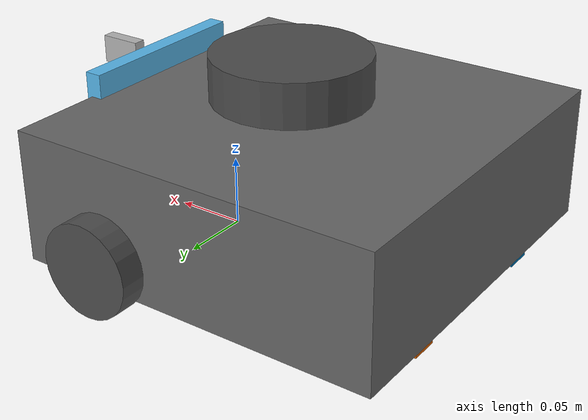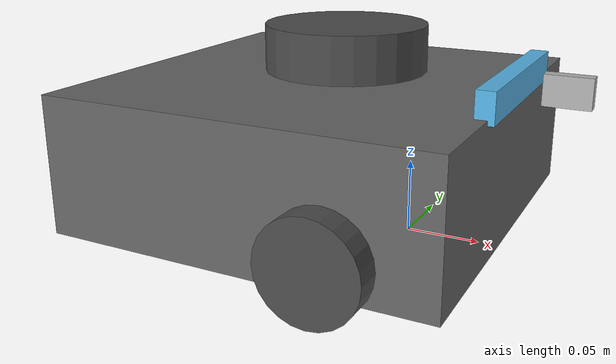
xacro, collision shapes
<?xml version="1.0" ?>
<robot xmlns:xacro="http://www.ros.org/wiki/xacro" name="turtlebot3_waffle">
  <xacro:include filename="$(find multi_turtlebot_sim)/urdf/gazebo_specific.urdf.xacro" />

  <xacro:arg name="frame_prefix" default=""/>
  <xacro:property name="frame_prefix" value="$(arg frame_prefix)"/>
  <xacro:if value="${ frame_prefix  != ''}">
    <!-- Adding '/' to the end of the frame_prefix -->
    <xacro:property name="frame_prefix" value="$(arg frame_prefix)/"/>
  </xacro:if>

  <xacro:arg name="topic_prefix" default=""/>
  <xacro:property name="topic_prefix" value="$(arg topic_prefix)"/>

  <!-- "package://" isn't working with gazebo_ros ROS2(package is replaced by model) so it worked as a workaround to find the meshes -->
  <xacro:property name="meshes_folder" value="$(find multi_turtlebot_sim)/meshes"/>

  <!-- Init colour -->
  <material name="black">
      <color rgba="0.0 0.0 0.0 1.0"/>
  </material>

  <material name="dark">
    <color rgba="0.3 0.3 0.3 1.0"/>
  </material>

  <material name="light_black">
    <color rgba="0.4 0.4 0.4 1.0"/>
  </material>

  <material name="blue">
    <color rgba="0.0 0.0 0.8 1.0"/>
  </material>

  <material name="green">
    <color rgba="0.0 0.8 0.0 1.0"/>
  </material>

  <material name="grey">
    <color rgba="0.5 0.5 0.5 1.0"/>
  </material>

  <material name="orange">
    <color rgba="1.0 0.4235 0.0392 1.0"/>
  </material>

  <material name="brown">
    <color rgba="0.8706 0.8118 0.7647 1.0"/>
  </material>

  <material name="red">
    <color rgba="0.8 0.0 0.0 1.0"/>
  </material>

  <material name="white">
    <color rgba="1.0 1.0 1.0 1.0"/>
  </material>

  <link name="base_footprint"/>

  <joint name="base_joint" type="fixed">
    <parent link="base_footprint"/>
    <child link="base_link" />
    <origin xyz="0 0 0.010" rpy="0 0 0"/>
  </joint>

  <link name="base_link">
    <visual>
      <origin xyz="-0.064 0 0.0" rpy="0 0 0"/>
      <geometry>
        <mesh filename="file://${meshes_folder}/bases/waffle_base.stl" scale="0.001 0.001 0.001"/>
      </geometry>
      <material name="light_black"/>
    </visual>

    <collision>
      <origin xyz="-0.064 0 0.047" rpy="0 0 0"/>
      <geometry>
        <box size="0.266 0.266 0.094"/>
      </geometry>
    </collision>

    <inertial>
      <origin xyz="0 0 0" rpy="0 0 0"/>
      <mass value="1.3729096e+00"/>
      <inertia ixx="8.7002718e-03" ixy="-4.7576583e-05" ixz="1.1160499e-04"
               iyy="8.6195418e-03" iyz="-3.5422299e-06"
               izz="1.4612727e-02" />
    </inertial>
  </link>

  <joint name="wheel_left_joint" type="continuous">
    <parent link="base_link"/>
    <child link="wheel_left_link"/>
    <origin xyz="0.0 0.144 0.023" rpy="-1.57 0 0"/>
    <axis xyz="0 0 1"/>
  </joint>

  <link name="wheel_left_link">
    <visual>
      <origin xyz="0 0 0" rpy="1.57 0 0"/>
      <geometry>
        <mesh filename="file://${meshes_folder}/wheels/left_tire.stl" scale="0.001 0.001 0.001"/>
      </geometry>
      <material name="dark"/>
    </visual>

    <collision>
      <origin xyz="0 0 0" rpy="0 0 0"/>
      <geometry>
        <cylinder length="0.018" radius="0.033"/>
      </geometry>
    </collision>

    <inertial>
      <origin xyz="0 0 0" />
      <mass value="2.8498940e-02" />
      <inertia ixx="1.1175580e-05" ixy="-4.2369783e-11" ixz="-5.9381719e-09"
               iyy="1.1192413e-05" iyz="-1.4400107e-11"
               izz="2.0712558e-05" />
      </inertial>
  </link>

  <joint name="wheel_right_joint" type="continuous">
    <parent link="base_link"/>
    <child link="wheel_right_link"/>
    <origin xyz="0.0 -0.144 0.023" rpy="-1.57 0 0"/>
    <axis xyz="0 0 1"/>
  </joint>

  <link name="wheel_right_link">
    <visual>
      <origin xyz="0 0 0" rpy="1.57 0 0"/>
      <geometry>
        <mesh filename="file://${meshes_folder}/wheels/right_tire.stl" scale="0.001 0.001 0.001"/>
      </geometry>
      <material name="dark"/>
    </visual>

    <collision>
      <origin xyz="0 0 0" rpy="0 0 0"/>
      <geometry>
        <cylinder length="0.018" radius="0.033"/>
      </geometry>
    </collision>

    <inertial>
      <origin xyz="0 0 0" />
      <mass value="2.8498940e-02" />
      <inertia ixx="1.1175580e-05" ixy="-4.2369783e-11" ixz="-5.9381719e-09"
               iyy="1.1192413e-05" iyz="-1.4400107e-11"
               izz="2.0712558e-05" />
      </inertial>
  </link>

  <joint name="caster_back_right_joint" type="fixed">
    <parent link="base_link"/>
    <child link="caster_back_right_link"/>
    <origin xyz="-0.177 -0.064 -0.004" rpy="-1.57 0 0"/>
  </joint>

  <link name="caster_back_right_link">
    <collision>
      <origin xyz="0 0.001 0" rpy="0 0 0"/>
      <geometry>
        <box size="0.030 0.009 0.020"/>
      </geometry>
    </collision>

    <inertial>
      <origin xyz="0 0 0" />
      <mass value="0.005" />
      <inertia ixx="0.001" ixy="0.0" ixz="0.0"
               iyy="0.001" iyz="0.0"
               izz="0.001" />
    </inertial>
  </link>

  <joint name="caster_back_left_joint" type="fixed">
    <parent link="base_link"/>
    <child link="caster_back_left_link"/>
    <origin xyz="-0.177 0.064 -0.004" rpy="-1.57 0 0"/>
  </joint>

  <link name="caster_back_left_link">
    <collision>
      <origin xyz="0 0.001 0" rpy="0 0 0"/>
      <geometry>
        <box size="0.030 0.009 0.020"/>
      </geometry>
    </collision>

    <inertial>
      <origin xyz="0 0 0" />
      <mass value="0.005" />
      <inertia ixx="0.001" ixy="0.0" ixz="0.0"
               iyy="0.001" iyz="0.0"
               izz="0.001" />
    </inertial>
  </link>

  <link name="imu_link">
    <inertial>
      <mass value="0.01"/>
      <origin xyz="0 0 0" rpy="0 0 0"/>
      <inertia ixx="0.0001" ixy="0.0" ixz="0.0" iyy="0.0001" iyz="0.0" izz="0.0001"/>
    </inertial>
    <visual>
      <geometry>
        <box size="0.030 0.009 0.020"/>
      </geometry>
    </visual>
    <collision>
      <geometry>
        <box size="0.030 0.009 0.020"/>
      </geometry>
    </collision>
  </link>

  <joint name="imu_joint" type="fixed">
    <parent link="base_link"/>
    <child link="imu_link"/>
    <origin xyz="0 0 0" rpy="0 0 0"/>
  </joint>

  <joint name="scan_joint" type="fixed">
    <parent link="base_link"/>
    <child link="base_scan"/>
    <origin xyz="-0.064 0 0.122" rpy="0 0 0"/>
  </joint>

  <link name="uwb_link">
    <inertial>
      <mass value="0.01"/>
      <origin xyz="0 0 0" rpy="0 0 0"/>
      <inertia ixx="0.0001" ixy="0.0" ixz="0.0" iyy="0.0001" iyz="0.0" izz="0.0001"/>
    </inertial>
    <visual>
      <geometry>
        <box size="0.030 0.009 0.020"/>
      </geometry>
    </visual>
    <collision>
      <geometry>
        <box size="0.030 0.009 0.020"/>
      </geometry>
    </collision>
  </link>

  <joint name="uwb_joint" type="fixed">
    <parent link="base_link"/>
    <child link="uwb_link"/>
    <origin xyz="0.1 0 0.1" rpy="0 0 0"/>
  </joint>

  <link name="base_scan">
    <visual>
      <origin xyz="0 0 0" rpy="0 0 0"/>
      <geometry>
        <mesh filename="file://${meshes_folder}/sensors/lds.stl" scale="0.001 0.001 0.001"/>
      </geometry>
      <material name="dark"/>
    </visual>

    <collision>
      <origin xyz="0.015 0 -0.0065" rpy="0 0 0"/>
      <geometry>
        <cylinder length="0.0315" radius="0.055"/>
      </geometry>
    </collision>

    <inertial>
      <mass value="0.114" />
      <origin xyz="0 0 0" />
      <inertia ixx="0.001" ixy="0.0" ixz="0.0"
               iyy="0.001" iyz="0.0"
               izz="0.001" />
    </inertial>
  </link>

  <joint name="camera_joint" type="fixed">
    <origin xyz="0.064 -0.065 0.094" rpy="0 0 0"/>
    <parent link="base_link"/>
    <child link="camera_link"/>
  </joint>

  <link name="camera_link">
    <visual>
     <origin xyz="0 0 0" rpy="1.57 0 1.57"/>
      <geometry>
       <mesh filename="file://${meshes_folder}/sensors/r200.dae" />
      </geometry>
    </visual>
    <collision>
      <origin xyz="0.003 0.065 0.007" rpy="0 0 0"/>
      <geometry>
        <box size="0.012 0.132 0.020"/>
      </geometry>
    </collision>

    <!-- This inertial field needs doesn't contain reliable data!! -->
  </link>

  <joint name="camera_rgb_joint" type="fixed">
    <origin xyz="0.005 0.018 0.013" rpy="0 0 0"/>
    <parent link="camera_link"/>
    <child link="camera_rgb_frame"/>
  </joint>
  <link name="camera_rgb_frame"/>

  <joint name="camera_rgb_optical_joint" type="fixed">
    <origin xyz="0 0 0" rpy="-1.57 0 -1.57"/>
    <parent link="camera_rgb_frame"/>
    <child link="camera_rgb_optical_frame"/>
  </joint>
  <link name="camera_rgb_optical_frame"/>

  <joint name="camera_depth_joint" type="fixed">
    <origin xyz="0.005 0.028 0.013" rpy="0 0 0"/>
    <parent link="camera_link"/>
    <child link="camera_depth_frame"/>
  </joint>
  <link name="camera_depth_frame"/>

  <joint name="camera_depth_optical_joint" type="fixed">
    <origin xyz="0 0 0" rpy="-1.57 0 -1.57"/>
    <parent link="camera_depth_frame"/>
    <child link="camera_depth_optical_frame"/>
  </joint>
  <link name="camera_depth_optical_frame"/>

  <xacro:gazebo_specific frame_prefix="${frame_prefix}" topic_prefix="${topic_prefix}"/>

</robot>
